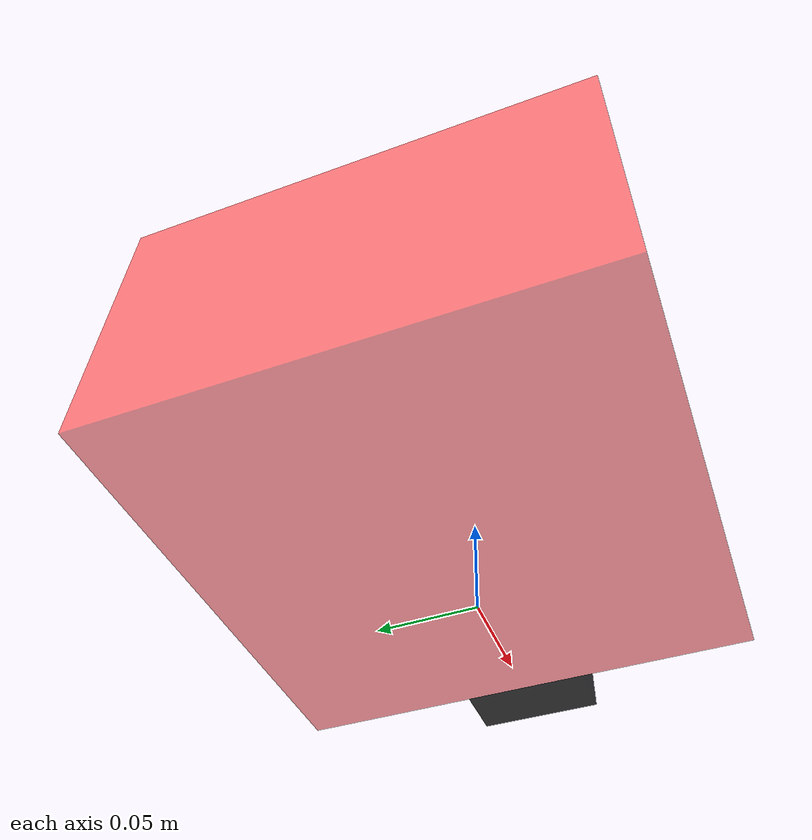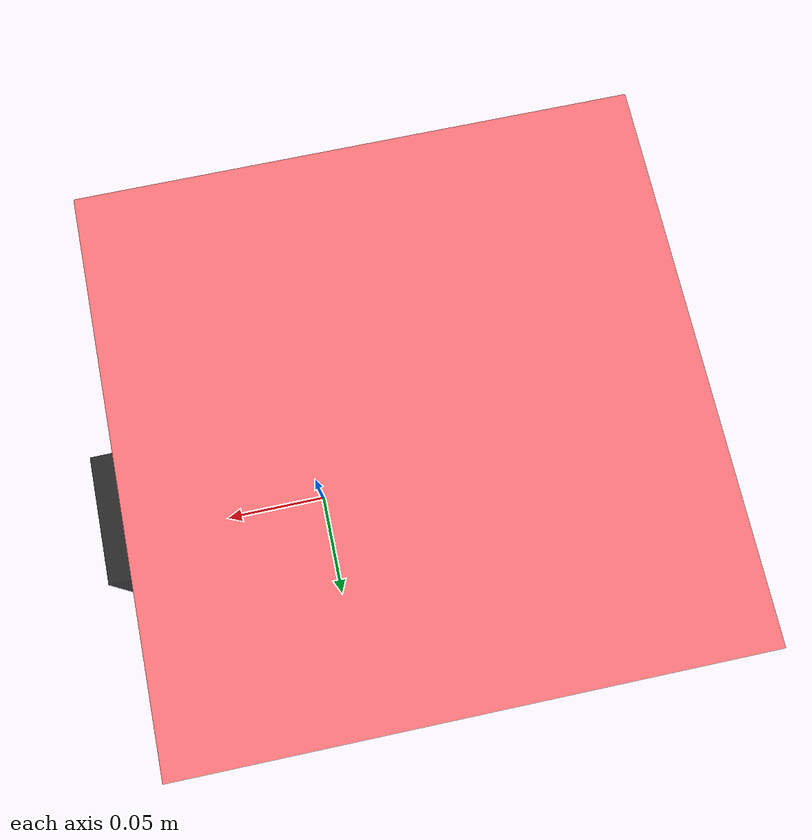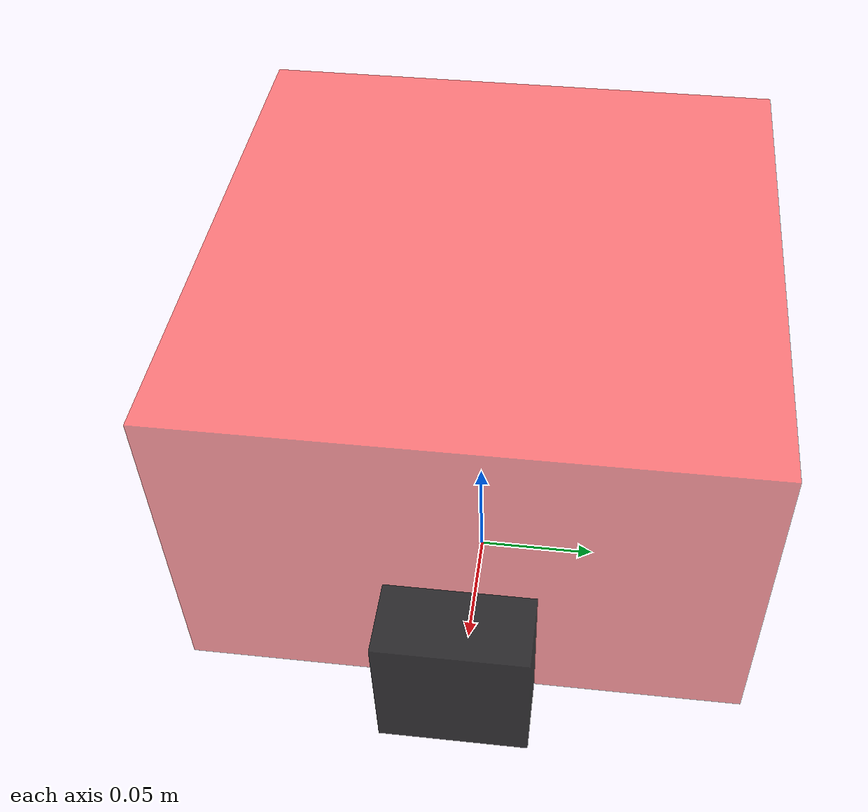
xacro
<?xml version="1.0"?>
<robot xmlns:xacro="http://www.ros.org/wiki/xacro" name="oit_minibot_light_v5">
  <xacro:property name="body_d" value="0.23" />
  <xacro:property name="body_w" value="0.23" />
  <xacro:property name="body_h" value="0.1415" />
  <xacro:property name="body_offset_x" value="-0.045" />
  <xacro:property name="body_offset_z" value="${body_h/2}" />

  <link name="base_link">
    <collision>
      <origin rpy="0 0 0" xyz="${body_offset_x} 0 ${body_offset_z}"/>
      <geometry>
        <box size="${body_d} ${body_w} ${body_h}"/>
      </geometry>
    </collision>
    <visual>
      <origin rpy="0 0 0" xyz="${body_offset_x} 0 ${body_offset_z}"/>
      <geometry>
        <box size="${body_d} ${body_w} ${body_h}"/>
      </geometry>
      <material name="vehicle_mat">
        <color rgba="1.0 0.0 0.0 0.5"/>
      </material>
    </visual>
  </link>

  <xacro:property name="laser_d" value="0.06" />
  <xacro:property name="laser_w" value="0.06" />
  <xacro:property name="laser_h" value="0.06" />
  <xacro:property name="laser_x" value="0.07" />
  <xacro:property name="laser_z" value="0.0313" />

  <joint name="laser_joint" type="fixed">
    <origin xyz="${laser_x} 0 ${laser_z}" rpy="0 0 ${radians(-90)}"/>
    <parent link="base_link"/>
    <child link="base_laser_link"/>
  </joint>

  <link name="base_laser_link">
    <collision>
      <origin rpy="0 0 0" xyz="0 0 0"/>
      <geometry>
        <box size="${laser_d} ${laser_w} ${laser_h}"/>
      </geometry>
    </collision>
    <visual>
      <origin rpy="0 0 0" xyz="0 0 0"/>
      <geometry>
        <box size="${laser_d} ${laser_w} ${laser_h}"/>
      </geometry>
      <material name="laser_mat">
        <color rgba="0.0 0.0 0.0 0.8"/>
      </material>
    </visual>
  </link>
</robot>
